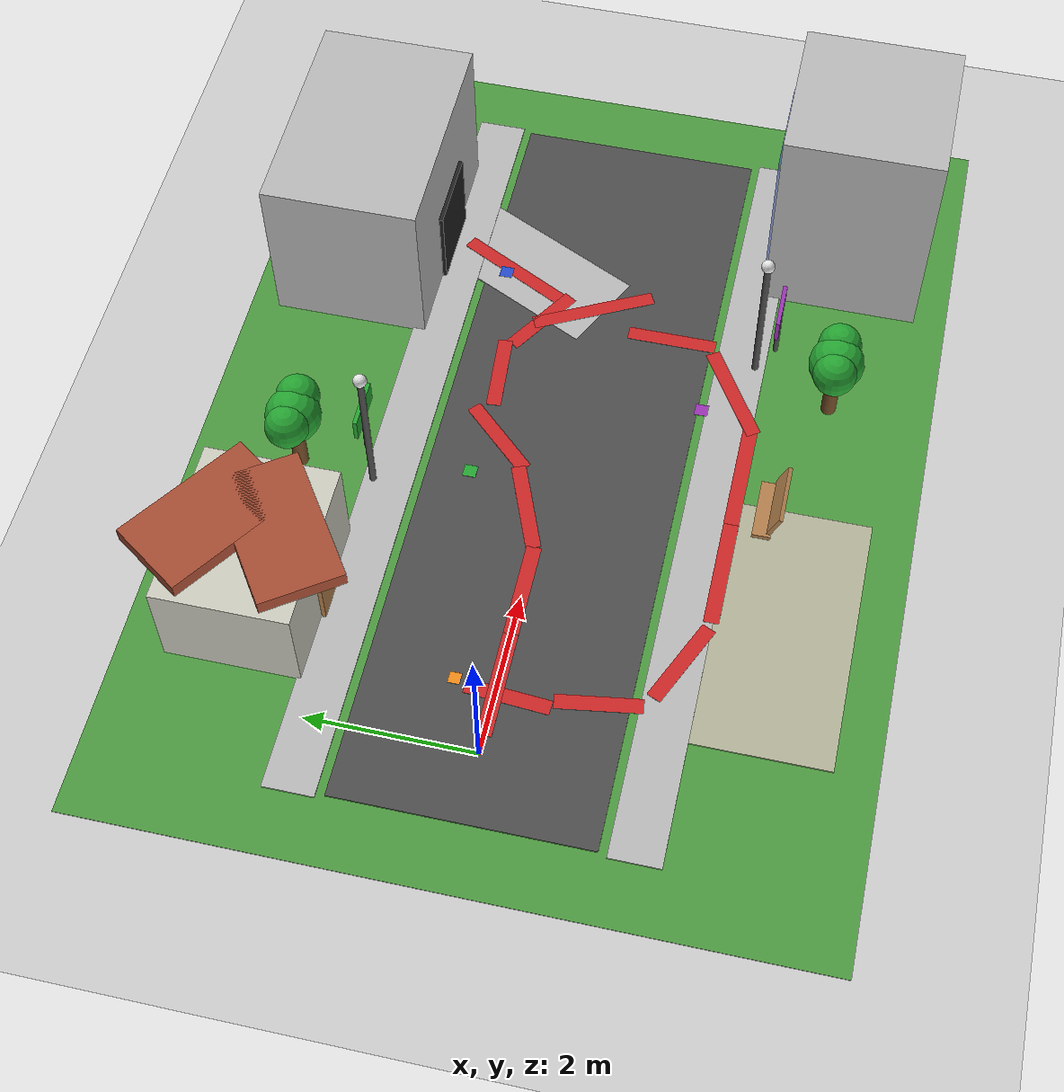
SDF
<sdf version='1.6'>
  <world name='blue_delivery_city'>
    <include>
      <uri>model://ground_plane</uri>
    </include>
    <include>
      <uri>model://sun</uri>
    </include>

    <scene>
      <ambient>0.66 0.66 0.66 1</ambient>
      <background>0.76 0.85 0.93 1</background>
      <shadows>1</shadows>
      <sky>
        <clouds>1</clouds>
      </sky>
    </scene>

    <physics name='default_physics' default='1' type='ode'>
      <max_step_size>0.001</max_step_size>
      <real_time_factor>1</real_time_factor>
      <real_time_update_rate>1000</real_time_update_rate>
    </physics>

    <gui fullscreen='0'>
      <camera name='user_camera'>
        <pose frame=''>4.2 0.3 14.0 0 1.49 0</pose>
        <view_controller>orbit</view_controller>
        <projection_type>perspective</projection_type>
      </camera>
    </gui>

    <light name='street_fill' type='directional'>
      <cast_shadows>true</cast_shadows>
      <pose>0 0 12 0 0 0</pose>
      <diffuse>0.65 0.65 0.68 1</diffuse>
      <specular>0.18 0.18 0.18 1</specular>
      <attenuation>
        <range>100</range>
        <constant>0.8</constant>
        <linear>0.01</linear>
        <quadratic>0.001</quadratic>
      </attenuation>
      <direction>-0.25 0.15 -1</direction>
    </light>

    <model name='city_grass'>
      <static>1</static>
      <pose>4.1 0.0 0.005 0 0 0</pose>
      <link name='link'>
        <collision name='collision'><geometry><box><size>11.5 8.6 0.01</size></box></geometry></collision>
        <visual name='visual'>
          <geometry><box><size>11.5 8.6 0.01</size></box></geometry>
          <material><script><uri>file://media/materials/scripts/gazebo.material</uri><name>Gazebo/Grass</name></script></material>
        </visual>
      </link>
    </model>

    <model name='main_road'>
      <static>1</static>
      <pose>4.1 0.0 0.02 0 0 0</pose>
      <link name='link'>
        <collision name='collision'><geometry><box><size>9.9 3.0 0.02</size></box></geometry></collision>
        <visual name='visual'>
          <geometry><box><size>9.9 3.0 0.02</size></box></geometry>
          <material><script><uri>file://media/materials/scripts/gazebo.material</uri><name>Gazebo/Road</name></script></material>
        </visual>
      </link>
    </model>

    <model name='north_sidewalk'>
      <static>1</static>
      <pose>4.1 1.90 0.03 0 0 0</pose>
      <link name='link'><visual name='visual'><geometry><box><size>10.0 0.60 0.02</size></box></geometry><material><script><uri>file://media/materials/scripts/gazebo.material</uri><name>Gazebo/Footway</name></script></material></visual></link>
    </model>
    <model name='south_sidewalk'>
      <static>1</static>
      <pose>4.1 -1.90 0.03 0 0 0</pose>
      <link name='link'><visual name='visual'><geometry><box><size>10.0 0.60 0.02</size></box></geometry><material><script><uri>file://media/materials/scripts/gazebo.material</uri><name>Gazebo/Footway</name></script></material></visual></link>
    </model>

    <model name='loading_lane'>
      <static>1</static>
      <pose>6.8 1.05 0.021 0 0 1.12</pose>
      <link name='link'><collision name='collision'><geometry><box><size>2.5 1.1 0.02</size></box></geometry></collision><visual name='visual'><geometry><box><size>2.5 1.1 0.02</size></box></geometry><material><script><uri>file://media/materials/scripts/gazebo.material</uri><name>Gazebo/Secondary</name></script></material></visual></link>
    </model>

    <model name='house_body'>
      <static>1</static>
      <pose>1.45 2.95 0.62 0 0 0</pose>
      <link name='link'><collision name='collision'><geometry><box><size>2.0 1.6 1.24</size></box></geometry></collision><visual name='visual'><geometry><box><size>2.0 1.6 1.24</size></box></geometry><material><script><uri>file://media/materials/scripts/gazebo.material</uri><name>Gazebo/PaintedWall</name></script></material></visual></link>
    </model>
    <model name='house_roof_left'>
      <static>1</static>
      <pose>1.45 2.55 1.42 0 0 0.60</pose>
      <link name='link'><visual name='visual'><geometry><box><size>1.7 1.0 0.18</size></box></geometry><material><script><uri>file://media/materials/scripts/gazebo.material</uri><name>Gazebo/Bricks</name></script></material></visual></link>
    </model>
    <model name='house_roof_right'>
      <static>1</static>
      <pose>1.45 3.35 1.42 0 0 -0.60</pose>
      <link name='link'><visual name='visual'><geometry><box><size>1.7 1.0 0.18</size></box></geometry><material><script><uri>file://media/materials/scripts/gazebo.material</uri><name>Gazebo/Bricks</name></script></material></visual></link>
    </model>
    <model name='house_door'>
      <static>1</static>
      <pose>1.45 2.12 0.34 0 0 0</pose>
      <link name='link'><visual name='visual'><geometry><box><size>0.38 0.05 0.68</size></box></geometry><material><script><uri>file://media/materials/scripts/gazebo.material</uri><name>Gazebo/Wood</name></script></material></visual></link>
    </model>

    <model name='warehouse'>
      <static>1</static>
      <pose>6.9 3.0 1.05 0 0 0</pose>
      <link name='link'><collision name='collision'><geometry><box><size>2.8 1.9 2.1</size></box></geometry></collision><visual name='visual'><geometry><box><size>2.8 1.9 2.1</size></box></geometry><material><script><uri>file://media/materials/scripts/gazebo.material</uri><name>Gazebo/BuildingFrame</name></script></material></visual></link>
    </model>
    <model name='warehouse_door'>
      <static>1</static>
      <pose>6.9 2.02 0.55 0 0 0</pose>
      <link name='link'><visual name='visual'><geometry><box><size>1.0 0.05 1.1</size></box></geometry><material><script><uri>file://media/materials/scripts/gazebo.material</uri><name>Gazebo/FlatBlack</name></script></material></visual></link>
    </model>
    <model name='office_tower'>
      <static>1</static>
      <pose>7.9 -2.95 1.40 0 0 0</pose>
      <link name='link'><collision name='collision'><geometry><box><size>1.9 1.9 2.8</size></box></geometry></collision><visual name='visual'><geometry><box><size>1.9 1.9 2.8</size></box></geometry><material><script><uri>file://media/materials/scripts/gazebo.material</uri><name>Gazebo/BuildingFrame</name></script></material></visual></link>
    </model>
    <model name='office_glass'>
      <static>1</static>
      <pose>7.9 -1.98 1.18 0 0 0</pose>
      <link name='link'><visual name='visual'><geometry><box><size>1.25 0.05 1.9</size></box></geometry><material><script><uri>file://media/materials/scripts/gazebo.material</uri><name>Gazebo/BlueTransparent</name></script></material></visual></link>
    </model>

    <model name='parking_lot'>
      <static>1</static>
      <pose>2.2 -2.85 0.02 0 0 0</pose>
      <link name='link'><collision name='collision'><geometry><box><size>3.2 1.9 0.02</size></box></geometry></collision><visual name='visual'><geometry><box><size>3.2 1.9 0.02</size></box></geometry><material><script><uri>file://media/materials/scripts/gazebo.material</uri><name>Gazebo/Residential</name></script></material></visual></link>
    </model>

    <model name='bench_seat'>
      <static>1</static>
      <pose>3.6 -2.55 0.28 0 0 0</pose>
      <link name='link'><visual name='visual'><geometry><box><size>0.75 0.22 0.06</size></box></geometry><material><script><uri>file://media/materials/scripts/gazebo.material</uri><name>Gazebo/Wood</name></script></material></visual></link>
    </model>
    <model name='bench_back'>
      <static>1</static>
      <pose>3.6 -2.69 0.53 0.35 0 0</pose>
      <link name='link'><visual name='visual'><geometry><box><size>0.75 0.05 0.34</size></box></geometry><material><script><uri>file://media/materials/scripts/gazebo.material</uri><name>Gazebo/Wood</name></script></material></visual></link>
    </model>

    <model name='lamp_post_1'>
      <static>1</static>
      <pose>3.2 2.08 0.98 0 0 0</pose>
      <link name='link'>
        <visual name='pole'><geometry><cylinder><radius>0.04</radius><length>1.96</length></cylinder></geometry><material><script><uri>file://media/materials/scripts/gazebo.material</uri><name>Gazebo/DarkGrey</name></script></material></visual>
        <visual name='lamp'><pose>0 0 1.0 0 0 0</pose><geometry><sphere><radius>0.08</radius></sphere></geometry><material><script><uri>file://media/materials/scripts/gazebo.material</uri><name>Gazebo/WhiteGlow</name></script></material></visual>
      </link>
    </model>
    <model name='lamp_post_2'>
      <static>1</static>
      <pose>5.8 -2.08 0.98 0 0 0</pose>
      <link name='link'>
        <visual name='pole'><geometry><cylinder><radius>0.04</radius><length>1.96</length></cylinder></geometry><material><script><uri>file://media/materials/scripts/gazebo.material</uri><name>Gazebo/DarkGrey</name></script></material></visual>
        <visual name='lamp'><pose>0 0 1.0 0 0 0</pose><geometry><sphere><radius>0.08</radius></sphere></geometry><material><script><uri>file://media/materials/scripts/gazebo.material</uri><name>Gazebo/WhiteGlow</name></script></material></visual>
      </link>
    </model>

    <model name='tree_1_trunk'>
      <static>1</static>
      <pose>3.3 3.0 0.30 0 0 0</pose>
      <link name='link'><visual name='visual'><geometry><cylinder><radius>0.09</radius><length>0.60</length></cylinder></geometry><material><script><uri>file://media/materials/scripts/gazebo.material</uri><name>Gazebo/Trunk</name></script></material></visual></link>
    </model>
    <model name='tree_1_leaf_a'>
      <static>1</static>
      <pose>3.3 3.0 0.92 0 0 0</pose>
      <link name='link'><visual name='visual'><geometry><sphere><radius>0.33</radius></sphere></geometry><material><script><uri>file://media/materials/scripts/gazebo.material</uri><name>Gazebo/Green</name></script></material></visual></link>
    </model>
    <model name='tree_1_leaf_b'>
      <static>1</static>
      <pose>3.08 3.0 1.0 0 0 0</pose>
      <link name='link'><visual name='visual'><geometry><sphere><radius>0.26</radius></sphere></geometry><material><script><uri>file://media/materials/scripts/gazebo.material</uri><name>Gazebo/Green</name></script></material></visual></link>
    </model>
    <model name='tree_1_leaf_c'>
      <static>1</static>
      <pose>3.52 3.0 1.0 0 0 0</pose>
      <link name='link'><visual name='visual'><geometry><sphere><radius>0.26</radius></sphere></geometry><material><script><uri>file://media/materials/scripts/gazebo.material</uri><name>Gazebo/Green</name></script></material></visual></link>
    </model>

    <model name='tree_2_trunk'>
      <static>1</static>
      <pose>5.4 -3.05 0.30 0 0 0</pose>
      <link name='link'><visual name='visual'><geometry><cylinder><radius>0.09</radius><length>0.60</length></cylinder></geometry><material><script><uri>file://media/materials/scripts/gazebo.material</uri><name>Gazebo/Trunk</name></script></material></visual></link>
    </model>
    <model name='tree_2_leaf_a'>
      <static>1</static>
      <pose>5.4 -3.05 0.92 0 0 0</pose>
      <link name='link'><visual name='visual'><geometry><sphere><radius>0.33</radius></sphere></geometry><material><script><uri>file://media/materials/scripts/gazebo.material</uri><name>Gazebo/Green</name></script></material></visual></link>
    </model>
    <model name='tree_2_leaf_b'>
      <static>1</static>
      <pose>5.18 -3.05 1.0 0 0 0</pose>
      <link name='link'><visual name='visual'><geometry><sphere><radius>0.26</radius></sphere></geometry><material><script><uri>file://media/materials/scripts/gazebo.material</uri><name>Gazebo/Green</name></script></material></visual></link>
    </model>
    <model name='tree_2_leaf_c'>
      <static>1</static>
      <pose>5.62 -3.05 1.0 0 0 0</pose>
      <link name='link'><visual name='visual'><geometry><sphere><radius>0.26</radius></sphere></geometry><material><script><uri>file://media/materials/scripts/gazebo.material</uri><name>Gazebo/Green</name></script></material></visual></link>
    </model>

    <model name='loading_point_sign'>
      <static>1</static>
      <pose>0.95 2.28 0.75 0 0 0</pose>
      <link name='link'>
        <visual name='pole'><pose>0 0 -0.40 0 0 0</pose><geometry><cylinder><radius>0.03</radius><length>0.80</length></cylinder></geometry><material><script><uri>file://media/materials/scripts/gazebo.material</uri><name>Gazebo/DarkGrey</name></script></material></visual>
        <visual name='board'><geometry><box><size>0.60 0.05 0.30</size></box></geometry><material><script><uri>file://media/materials/scripts/gazebo.material</uri><name>Gazebo/Orange</name></script></material></visual>
      </link>
    </model>
    <model name='drop_point_sign'>
      <static>1</static>
      <pose>3.65 2.28 0.75 0 0 0</pose>
      <link name='link'>
        <visual name='pole'><pose>0 0 -0.40 0 0 0</pose><geometry><cylinder><radius>0.03</radius><length>0.80</length></cylinder></geometry><material><script><uri>file://media/materials/scripts/gazebo.material</uri><name>Gazebo/DarkGrey</name></script></material></visual>
        <visual name='board'><geometry><box><size>0.60 0.05 0.30</size></box></geometry><material><script><uri>file://media/materials/scripts/gazebo.material</uri><name>Gazebo/Green</name></script></material></visual>
      </link>
    </model>
    <model name='warehouse_stop_sign'>
      <static>1</static>
      <pose>6.65 2.28 0.75 0 0 0</pose>
      <link name='link'>
        <visual name='pole'><pose>0 0 -0.40 0 0 0</pose><geometry><cylinder><radius>0.03</radius><length>0.80</length></cylinder></geometry><material><script><uri>file://media/materials/scripts/gazebo.material</uri><name>Gazebo/DarkGrey</name></script></material></visual>
        <visual name='board'><geometry><box><size>0.60 0.05 0.30</size></box></geometry><material><script><uri>file://media/materials/scripts/gazebo.material</uri><name>Gazebo/Blue</name></script></material></visual>
      </link>
    </model>
    <model name='recharge_stop_sign'>
      <static>1</static>
      <pose>6.15 -2.28 0.75 0 0 0</pose>
      <link name='link'>
        <visual name='pole'><pose>0 0 -0.40 0 0 0</pose><geometry><cylinder><radius>0.03</radius><length>0.80</length></cylinder></geometry><material><script><uri>file://media/materials/scripts/gazebo.material</uri><name>Gazebo/DarkGrey</name></script></material></visual>
        <visual name='board'><geometry><box><size>0.60 0.05 0.30</size></box></geometry><material><script><uri>file://media/materials/scripts/gazebo.material</uri><name>Gazebo/Purple</name></script></material></visual>
      </link>
    </model>

    <model name='route_0'>
      <static>1</static>
      <pose>0.85 0.0 0.043 0 0 0</pose>
      <link name='link'><collision name='collision'><geometry><box><size>1.30 0.18 0.002</size></box></geometry></collision><visual name='visual'><geometry><box><size>1.30 0.18 0.002</size></box></geometry><material><script><uri>file://media/materials/scripts/gazebo.material</uri><name>Gazebo/RedGlow</name></script></material></visual></link>
    </model>
    <model name='route_1'>
      <static>1</static>
      <pose>2.05 0.0 0.043 0 0 0</pose>
      <link name='link'><collision name='collision'><geometry><box><size>1.25 0.18 0.002</size></box></geometry></collision><visual name='visual'><geometry><box><size>1.25 0.18 0.002</size></box></geometry><material><script><uri>file://media/materials/scripts/gazebo.material</uri><name>Gazebo/RedGlow</name></script></material></visual></link>
    </model>
    <model name='route_2'>
      <static>1</static>
      <pose>3.20 0.22 0.043 0 0 0.38</pose>
      <link name='link'><collision name='collision'><geometry><box><size>1.15 0.18 0.002</size></box></geometry></collision><visual name='visual'><geometry><box><size>1.15 0.18 0.002</size></box></geometry><material><script><uri>file://media/materials/scripts/gazebo.material</uri><name>Gazebo/RedGlow</name></script></material></visual></link>
    </model>
    <model name='route_3'>
      <static>1</static>
      <pose>4.10 0.76 0.043 0 0 0.82</pose>
      <link name='link'><collision name='collision'><geometry><box><size>1.10 0.18 0.002</size></box></geometry></collision><visual name='visual'><geometry><box><size>1.10 0.18 0.002</size></box></geometry><material><script><uri>file://media/materials/scripts/gazebo.material</uri><name>Gazebo/RedGlow</name></script></material></visual></link>
    </model>
    <model name='route_4'>
      <static>1</static>
      <pose>5.05 0.98 0.043 0 0 0.08</pose>
      <link name='link'><collision name='collision'><geometry><box><size>1.00 0.18 0.002</size></box></geometry></collision><visual name='visual'><geometry><box><size>1.00 0.18 0.002</size></box></geometry><material><script><uri>file://media/materials/scripts/gazebo.material</uri><name>Gazebo/RedGlow</name></script></material></visual></link>
    </model>
    <model name='route_5'>
      <static>1</static>
      <pose>5.95 0.65 0.043 0 0 -0.56</pose>
      <link name='link'><collision name='collision'><geometry><box><size>1.05 0.18 0.002</size></box></geometry></collision><visual name='visual'><geometry><box><size>1.05 0.18 0.002</size></box></geometry><material><script><uri>file://media/materials/scripts/gazebo.material</uri><name>Gazebo/RedGlow</name></script></material></visual></link>
    </model>
    <model name='route_6'>
      <static>1</static>
      <pose>6.65 1.12 0.043 0 0 1.10</pose>
      <link name='link'><collision name='collision'><geometry><box><size>1.60 0.18 0.002</size></box></geometry></collision><visual name='visual'><geometry><box><size>1.60 0.18 0.002</size></box></geometry><material><script><uri>file://media/materials/scripts/gazebo.material</uri><name>Gazebo/RedGlow</name></script></material></visual></link>
    </model>
    <model name='route_7'>
      <static>1</static>
      <pose>6.25 0.05 0.043 0 0 -1.10</pose>
      <link name='link'><collision name='collision'><geometry><box><size>1.55 0.18 0.002</size></box></geometry></collision><visual name='visual'><geometry><box><size>1.55 0.18 0.002</size></box></geometry><material><script><uri>file://media/materials/scripts/gazebo.material</uri><name>Gazebo/RedGlow</name></script></material></visual></link>
    </model>
    <model name='route_8'>
      <static>1</static>
      <pose>6.00 -1.00 0.043 0 0 -1.57</pose>
      <link name='link'><collision name='collision'><geometry><box><size>1.10 0.18 0.002</size></box></geometry></collision><visual name='visual'><geometry><box><size>1.10 0.18 0.002</size></box></geometry><material><script><uri>file://media/materials/scripts/gazebo.material</uri><name>Gazebo/RedGlow</name></script></material></visual></link>
    </model>
    <model name='route_9'>
      <static>1</static>
      <pose>5.35 -1.88 0.043 0 0 -2.58</pose>
      <link name='link'><collision name='collision'><geometry><box><size>1.30 0.18 0.002</size></box></geometry></collision><visual name='visual'><geometry><box><size>1.30 0.18 0.002</size></box></geometry><material><script><uri>file://media/materials/scripts/gazebo.material</uri><name>Gazebo/RedGlow</name></script></material></visual></link>
    </model>
    <model name='route_10'>
      <static>1</static>
      <pose>4.15 -2.18 0.043 0 0 3.14</pose>
      <link name='link'><collision name='collision'><geometry><box><size>1.35 0.18 0.002</size></box></geometry></collision><visual name='visual'><geometry><box><size>1.35 0.18 0.002</size></box></geometry><material><script><uri>file://media/materials/scripts/gazebo.material</uri><name>Gazebo/RedGlow</name></script></material></visual></link>
    </model>
    <model name='route_11'>
      <static>1</static>
      <pose>2.80 -2.18 0.043 0 0 3.14</pose>
      <link name='link'><collision name='collision'><geometry><box><size>1.35 0.18 0.002</size></box></geometry></collision><visual name='visual'><geometry><box><size>1.35 0.18 0.002</size></box></geometry><material><script><uri>file://media/materials/scripts/gazebo.material</uri><name>Gazebo/RedGlow</name></script></material></visual></link>
    </model>
    <model name='route_12'>
      <static>1</static>
      <pose>1.55 -1.95 0.043 0 0 2.72</pose>
      <link name='link'><collision name='collision'><geometry><box><size>1.10 0.18 0.002</size></box></geometry></collision><visual name='visual'><geometry><box><size>1.10 0.18 0.002</size></box></geometry><material><script><uri>file://media/materials/scripts/gazebo.material</uri><name>Gazebo/RedGlow</name></script></material></visual></link>
    </model>
    <model name='route_13'>
      <static>1</static>
      <pose>0.85 -1.15 0.043 0 0 1.72</pose>
      <link name='link'><collision name='collision'><geometry><box><size>1.00 0.18 0.002</size></box></geometry></collision><visual name='visual'><geometry><box><size>1.00 0.18 0.002</size></box></geometry><material><script><uri>file://media/materials/scripts/gazebo.material</uri><name>Gazebo/RedGlow</name></script></material></visual></link>
    </model>
    <model name='route_14'>
      <static>1</static>
      <pose>0.72 -0.15 0.043 0 0 1.50</pose>
      <link name='link'><collision name='collision'><geometry><box><size>1.00 0.18 0.002</size></box></geometry></collision><visual name='visual'><geometry><box><size>1.00 0.18 0.002</size></box></geometry><material><script><uri>file://media/materials/scripts/gazebo.material</uri><name>Gazebo/RedGlow</name></script></material></visual></link>
    </model>

    <model name='checkpoint_loading'>
      <static>1</static>
      <pose>0.82 0.48 0.044 0 0 0</pose>
      <link name='link'><collision name='collision'><geometry><box><size>0.14 0.14 0.002</size></box></geometry></collision><visual name='visual'><geometry><box><size>0.14 0.14 0.002</size></box></geometry><material><script><uri>file://media/materials/scripts/gazebo.material</uri><name>Gazebo/Orange</name></script></material></visual></link>
    </model>
    <model name='checkpoint_drop'>
      <static>1</static>
      <pose>3.55 0.98 0.044 0 0 0</pose>
      <link name='link'><collision name='collision'><geometry><box><size>0.16 0.16 0.002</size></box></geometry></collision><visual name='visual'><geometry><box><size>0.16 0.16 0.002</size></box></geometry><material><script><uri>file://media/materials/scripts/gazebo.material</uri><name>Gazebo/Green</name></script></material></visual></link>
    </model>
    <model name='checkpoint_warehouse'>
      <static>1</static>
      <pose>6.62 1.26 0.044 0 0 0</pose>
      <link name='link'><collision name='collision'><geometry><box><size>0.16 0.16 0.002</size></box></geometry></collision><visual name='visual'><geometry><box><size>0.16 0.16 0.002</size></box></geometry><material><script><uri>file://media/materials/scripts/gazebo.material</uri><name>Gazebo/Blue</name></script></material></visual></link>
    </model>
    <model name='checkpoint_recharge'>
      <static>1</static>
      <pose>5.02 -1.55 0.044 0 0 0</pose>
      <link name='link'><collision name='collision'><geometry><box><size>0.16 0.16 0.002</size></box></geometry></collision><visual name='visual'><geometry><box><size>0.16 0.16 0.002</size></box></geometry><material><script><uri>file://media/materials/scripts/gazebo.material</uri><name>Gazebo/Purple</name></script></material></visual></link>
    </model>
  </world>
</sdf>
